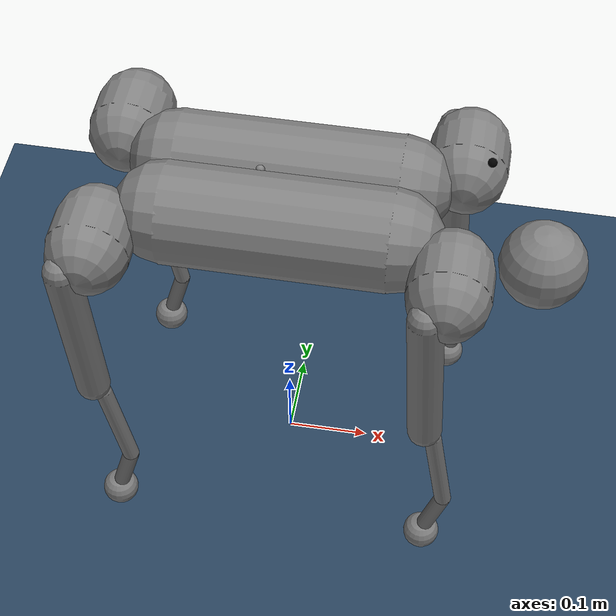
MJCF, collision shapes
<mujoco model="go2-mjx scene">
  <compiler angle="radian" meshdir="../assets/"/>

  <option timestep="0.004" iterations="1" ls_iterations="5">
    <flag eulerdamp="disable"/>
  </option>

  <size nkey="2"/>

  <visual>
    <global azimuth="120" elevation="-20"/>
    <headlight ambient="0.3 0.3 0.3" diffuse="0.6 0.6 0.6" specular="0 0 0"/>
    <rgba haze="0.15 0.25 0.35 1"/>
  </visual>

  <statistic extent="0.8" center="0 0 0.1"/>

  <default>
    <default class="go2">
      <joint armature="0.01" damping="0.1" frictionloss="0.2"/>
      <geom type="mesh" contype="0" conaffinity="0" friction="0.6"/>
      <default class="go2/abduction">
        <joint range="-1.0472 1.0472"/>
      </default>
      <default class="go2/hip">
        <default class="go2/front_hip">
          <joint range="-1.5708 3.4907"/>
        </default>
        <default class="go2/back_hip">
          <joint range="-0.5236 4.5379"/>
        </default>
      </default>
      <default class="go2/knee">
        <joint range="-2.7227 -0.83776"/>
      </default>
      <default class="go2/foot"/>
      <default class="go2/collision">
        <geom conaffinity="2" group="3"/>
        <default class="go2/collision/lidar">
          <geom size="0.05 0 0" type="sphere"/>
        </default>
        <default class="go2/collision/torso">
          <geom size="0.058 0.125 0" type="capsule"/>
          <default class="go2/collision/torso/left"/>
          <default class="go2/collision/torso/right"/>
        </default>
        <default class="go2/collision/hip">
          <geom size="0.046 0.02 0" type="capsule"/>
          <default class="go2/collision/hip/left"/>
          <default class="go2/collision/hip/right"/>
        </default>
        <default class="go2/collision/thigh">
          <geom size="0.02 0 0" type="capsule"/>
        </default>
        <default class="go2/collision/calf">
          <geom size="0.01 0 0" type="capsule"/>
          <default class="go2/collision/calf/upper"/>
          <default class="go2/collision/calf/lower"/>
        </default>
        <default class="go2/collision/foot">
          <geom size="0.022 0 0" type="sphere" condim="6" friction="0.8 0.02 0.01" solimp="0.9 0.95 0.022"/>
        </default>
      </default>
    </default>
    <default class="go2/abduction/motor">
      <general forcerange="-23.7 23.7"/>
    </default>
    <default class="go2/hip/motor">
      <general forcerange="-23.7 23.7"/>
    </default>
    <default class="go2/knee/motor">
      <general forcerange="-45.43 45.43"/>
    </default>
  </default>

  <asset>
    <texture type="skybox" colorspace="auto" builtin="gradient" rgb1="0.3 0.5 0.7" rgb2="0 0 0" width="512" height="3072"/>
    <texture type="2d" colorspace="auto" name="groundplane" builtin="checker" mark="edge" rgb1="0.2 0.3 0.4" rgb2="0.1 0.2 0.3" markrgb="0.8 0.8 0.8" width="300" height="300"/>
    <material name="metal" rgba="0.9 0.95 0.95 1"/>
    <material name="black" rgba="0 0 0 1"/>
    <material name="white"/>
    <material name="gray" rgba="0.671705 0.692426 0.77427 1"/>
    <material name="groundplane" texture="groundplane" texuniform="true" texrepeat="5 5" reflectance="0.2"/>
    <mesh name="base_0" content_type="model/obj" file="base_0.obj"/>
    <mesh name="base_1" content_type="model/obj" file="base_1.obj"/>
    <mesh name="base_2" content_type="model/obj" file="base_2.obj"/>
    <mesh name="base_3" content_type="model/obj" file="base_3.obj"/>
    <mesh name="base_4" content_type="model/obj" file="base_4.obj"/>
    <mesh name="hip_0" content_type="model/obj" file="hip_0.obj"/>
    <mesh name="hip_1" content_type="model/obj" file="hip_1.obj"/>
    <mesh name="thigh_0" content_type="model/obj" file="thigh_0.obj"/>
    <mesh name="thigh_1" content_type="model/obj" file="thigh_1.obj"/>
    <mesh name="thigh_mirror_0" content_type="model/obj" file="thigh_mirror_0.obj"/>
    <mesh name="thigh_mirror_1" content_type="model/obj" file="thigh_mirror_1.obj"/>
    <mesh name="calf_0" content_type="model/obj" file="calf_0.obj"/>
    <mesh name="calf_1" content_type="model/obj" file="calf_1.obj"/>
    <mesh name="calf_mirror_0" content_type="model/obj" file="calf_mirror_0.obj"/>
    <mesh name="calf_mirror_1" content_type="model/obj" file="calf_mirror_1.obj"/>
    <mesh name="foot" content_type="model/obj" file="foot.obj"/>
  </asset>

  <worldbody>
    <geom name="floor" size="0 0 0.05" type="plane" material="groundplane"/>
    <camera name="default" pos="0.846 -1.465 0.916" quat="0.791164 0.554139 0.148485 0.211997"/>
    <light pos="0 0 1.5" dir="0 0 -1" type="directional"/>
    <body name="base_link" childclass="go2" pos="0 0 0.445">
      <inertial pos="0.021112 0 -0.005366" quat="-0.000543471 0.713435 -0.00173769 0.700719" mass="6.921" diaginertia="0.107027 0.0980771 0.0244531"/>
      <joint type="free" armature="0" damping="0" frictionloss="0"/>
      <geom material="black" mesh="base_0"/>
      <geom material="black" mesh="base_1"/>
      <geom material="black" mesh="base_2"/>
      <geom material="white" mesh="base_3"/>
      <geom material="gray" mesh="base_4"/>
      <geom name="lidar_collision" class="go2/collision/lidar" pos="0.29 0 -0.055"/>
      <geom name="left_torso_collision" class="go2/collision/torso/left" pos="0 0.04 0" quat="0.707107 0 0.707107 0"/>
      <geom name="right_torso_collision" class="go2/collision/torso/right" pos="0 -0.04 0" quat="0.707107 0 0.707107 0"/>
      <site name="imu" pos="-0.02557 0 0.04232"/>
      <site name="vicon_marker" pos="0.22 0 0.095" material="black"/>
      <body name="front_right_hip" pos="0.1934 -0.0465 0">
        <inertial pos="-0.00539504 -0.0413848 -0.0563648" quat="0.706936 0.707253 0.000685605 -0.00594448" mass="0.638546" diaginertia="0.000452822 0.000564332 0.000834361"/>
        <joint name="front_right_hip_joint" class="go2/abduction" pos="0 0 0" axis="1 0 0" armature="0.00984806" damping="0.273812" frictionloss="0.212019"/>
        <geom quat="4.63268e-05 1 0 0" material="metal" mesh="hip_0"/>
        <geom quat="4.63268e-05 1 0 0" material="gray" mesh="hip_1"/>
        <geom name="front_right_hip_collision" class="go2/collision/hip/right" pos="0 -0.045 0" quat="0.707107 0.707107 0 0"/>
        <body name="front_right_thigh" pos="0 -0.0955 0">
          <inertial pos="-0.0176936 0.0207631 -0.0211701" quat="-0.353648 0.654075 0.416484 0.523125" mass="0.940988" diaginertia="0.00185501 0.00408487 0.00579158"/>
          <joint name="front_right_thigh_joint" class="go2/front_hip" pos="0 0 0" axis="0 1 0" armature="0.008979" damping="0.276797" frictionloss="0.215107"/>
          <geom material="metal" mesh="thigh_mirror_0"/>
          <geom material="gray" mesh="thigh_mirror_1"/>
          <geom name="front_right_thigh_collision" class="go2/collision/thigh" size="0.02 0.100125" pos="-0.015 0 -0.1" quat="0.999688 0 -0.0249766 0"/>
          <body name="front_right_calf" pos="0 0 -0.213">
            <inertial pos="-0.000969028 0.0144613 -0.0953293" quat="-0.508595 0.523356 0.537709 0.422255" mass="0.321185" diaginertia="7.10238e-05 0.000926239 0.000961252"/>
            <joint name="front_right_calf_joint" class="go2/knee" pos="0 0 0" axis="0 1 0" armature="0.0265876" damping="0.26187" frictionloss="1.05314"/>
            <geom material="gray" mesh="calf_mirror_0"/>
            <geom material="black" mesh="calf_mirror_1"/>
            <geom pos="0 0 -0.213" quat="1 0 0 0" material="black" mesh="foot"/>
            <geom name="front_right_calf_upper_collision" class="go2/collision/calf/upper" size="0.01 0.0657647" pos="0.01 0 -0.065" quat="0.997089 0 -0.0762506 0"/>
            <geom name="front_right_calf_lower_collision" class="go2/collision/calf/lower" size="0.01 0.0364005" pos="0.01 0 -0.165" quat="0.990334 0 0.138701 0"/>
            <geom name="front_right_foot_collision" class="go2/collision/foot" pos="-0.002 0 -0.213"/>
            <site name="front_right_foot" class="go2/foot" pos="-0.002 0 -0.213"/>
          </body>
        </body>
      </body>
      <body name="front_left_hip" pos="0.1934 0.0465 0">
        <inertial pos="-0.00539743 0.0562607 -0.0685062" quat="0.707238 0.706951 0.00582478 -0.000571805" mass="0.632832" diaginertia="0.000445976 0.000559152 0.000824266"/>
        <joint name="front_left_hip_joint" class="go2/abduction" pos="0 0 0" axis="1 0 0" armature="0.000265323" damping="0.290567" frictionloss="0.217182"/>
        <geom material="metal" mesh="hip_0"/>
        <geom material="gray" mesh="hip_1"/>
        <geom name="front_left_hip_collision" class="go2/collision/hip/left" pos="0 0.045 0" quat="0.707107 0.707107 0 0"/>
        <body name="front_left_thigh" pos="0 0.0955 0">
          <inertial pos="-0.0287343 -0.0218318 -0.00920139" quat="0.395937 0.716359 0.553963 -0.15228" mass="0.976759" diaginertia="0.000547193 0.0100671 0.0102892"/>
          <joint name="front_left_thigh_joint" class="go2/front_hip" pos="0 0 0" axis="0 1 0" armature="0.00866881" damping="0.26283" frictionloss="0.270164"/>
          <geom material="metal" mesh="thigh_0"/>
          <geom material="gray" mesh="thigh_1"/>
          <geom name="front_left_thigh_collision" class="go2/collision/thigh" size="0.02 0.100125" pos="-0.015 0 -0.1" quat="0.999688 0 -0.0249766 0"/>
          <body name="front_left_calf" pos="0 0 -0.213">
            <inertial pos="0.0137565 -0.0538878 -0.0944655" quat="0.211941 0.600701 0.722358 -0.269144" mass="0.353822" diaginertia="6.47118e-05 0.00253923 0.00258703"/>
            <joint name="front_left_calf_joint" class="go2/knee" pos="0 0 0" axis="0 1 0" armature="0.02577" damping="0.275625" frictionloss="0.972735"/>
            <geom material="gray" mesh="calf_0"/>
            <geom material="black" mesh="calf_1"/>
            <geom pos="0 0 -0.213" quat="1 0 0 0" material="black" mesh="foot"/>
            <geom name="front_left_calf_upper_collision" class="go2/collision/calf/upper" size="0.01 0.0657647" pos="0.01 0 -0.065" quat="0.997089 0 -0.0762506 0"/>
            <geom name="front_left_calf_lower_collision" class="go2/collision/calf/lower" size="0.01 0.0364005" pos="0.01 0 -0.165" quat="0.990334 0 0.138701 0"/>
            <geom name="front_left_foot_collision" class="go2/collision/foot" pos="-0.002 0 -0.213"/>
            <site name="front_left_foot" class="go2/foot" pos="-0.002 0 -0.213"/>
          </body>
        </body>
      </body>
      <body name="hind_right_hip" pos="-0.1934 -0.0465 0">
        <inertial pos="0.00536951 -0.040392 -0.0693013" quat="0.706912 0.707277 -0.00062044 0.00587229" mass="0.618177" diaginertia="0.000437574 0.000546353 0.000807046"/>
        <joint name="hind_right_hip_joint" class="go2/abduction" pos="0 0 0" axis="1 0 0" armature="0.00273289" damping="0.265741" frictionloss="0.201325"/>
        <geom quat="2.14617e-09 4.63268e-05 4.63268e-05 -1" material="metal" mesh="hip_0"/>
        <geom quat="2.14617e-09 4.63268e-05 4.63268e-05 -1" material="gray" mesh="hip_1"/>
        <geom name="hind_right_hip_collision" class="go2/collision/hip/right" pos="0 -0.045 0" quat="0.707107 0.707107 0 0"/>
        <body name="hind_right_thigh" pos="0 -0.0955 0">
          <inertial pos="-0.0237664 0.0229732 -0.0116018" quat="-0.115718 0.543025 0.661631 0.503962" mass="0.939326" diaginertia="0.000757916 0.00807004 0.00861703"/>
          <joint name="hind_right_thigh_joint" class="go2/back_hip" pos="0 0 0" axis="0 1 0" armature="0.00697476" damping="0.270716" frictionloss="0.215497"/>
          <geom material="metal" mesh="thigh_mirror_0"/>
          <geom material="gray" mesh="thigh_mirror_1"/>
          <geom name="hind_right_thigh_collision" class="go2/collision/thigh" size="0.02 0.100125" pos="-0.015 0 -0.1" quat="0.999688 0 -0.0249766 0"/>
          <body name="hind_right_calf" pos="0 0 -0.213">
            <inertial pos="0.00298957 0.0410954 -0.0927355" quat="-0.283062 0.718639 0.597297 0.216032" mass="0.360365" diaginertia="6.54825e-05 0.00219437 0.00224158"/>
            <joint name="hind_right_calf_joint" class="go2/knee" pos="0 0 0" axis="0 1 0" armature="0.0286798" damping="0.288348" frictionloss="0.651666"/>
            <geom material="gray" mesh="calf_mirror_0"/>
            <geom material="black" mesh="calf_mirror_1"/>
            <geom pos="0 0 -0.213" quat="1 0 0 0" material="black" mesh="foot"/>
            <geom name="hind_right_calf_upper_collision" class="go2/collision/calf/upper" size="0.01 0.0657647" pos="0.01 0 -0.065" quat="0.997089 0 -0.0762506 0"/>
            <geom name="hind_right_calf_lower_collision" class="go2/collision/calf/lower" size="0.01 0.0364005" pos="0.01 0 -0.165" quat="0.990334 0 0.138701 0"/>
            <geom name="hind_right_foot_collision" class="go2/collision/foot" pos="-0.002 0 -0.213"/>
            <site name="hind_right_foot" class="go2/foot" pos="-0.002 0 -0.213"/>
          </body>
        </body>
      </body>
      <body name="hind_left_hip" pos="-0.1934 0.0465 0">
        <inertial pos="0.00533014 0.0354588 -0.0891108" quat="0.707399 0.706789 -0.00594581 0.000686325" mass="0.63646" diaginertia="0.000451375 0.000562488 0.000831681"/>
        <joint name="hind_left_hip_joint" class="go2/abduction" pos="0 0 0" axis="1 0 0" armature="0.00743886" damping="0.281798" frictionloss="0.325581"/>
        <geom quat="4.63268e-05 0 1 0" material="metal" mesh="hip_0"/>
        <geom quat="4.63268e-05 0 1 0" material="gray" mesh="hip_1"/>
        <geom name="hind_left_hip_collision" class="go2/collision/hip/left" pos="0 0.045 0" quat="0.707107 0.707107 0 0"/>
        <body name="hind_left_thigh" pos="0 0.0955 0">
          <inertial pos="-0.0207307 -0.0316548 -0.0097971" quat="0.707303 -0.500629 -0.465476 -0.180071" mass="0.907451" diaginertia="0.00091271 0.00496607 0.00563906"/>
          <joint name="hind_left_thigh_joint" class="go2/back_hip" pos="0 0 0" axis="0 1 0" armature="0.00850293" damping="0.260745" frictionloss="0.199008"/>
          <geom material="metal" mesh="thigh_0"/>
          <geom material="gray" mesh="thigh_1"/>
          <geom name="hind_left_thigh_collision" class="go2/collision/thigh" size="0.02 0.100125" pos="-0.015 0 -0.1" quat="0.999688 0 -0.0249766 0"/>
          <body name="hind_left_calf" pos="0 0 -0.213">
            <inertial pos="-0.00715084 0.0148516 -0.0888009" quat="-0.29179 0.631988 0.648358 0.308353" mass="0.336054" diaginertia="6.51809e-05 0.00133707 0.00137907"/>
            <joint name="hind_left_calf_joint" class="go2/knee" pos="0 0 0" axis="0 1 0" armature="0.0269508" damping="0.240772" frictionloss="1.01705"/>
            <geom material="gray" mesh="calf_0"/>
            <geom material="black" mesh="calf_1"/>
            <geom pos="0 0 -0.213" quat="1 0 0 0" material="black" mesh="foot"/>
            <geom name="hind_left_calf_upper_collision" class="go2/collision/calf/upper" size="0.01 0.0657647" pos="0.01 0 -0.065" quat="0.997089 0 -0.0762506 0"/>
            <geom name="hind_left_calf_lower_collision" class="go2/collision/calf/lower" size="0.01 0.0364005" pos="0.01 0 -0.165" quat="0.990334 0 0.138701 0"/>
            <geom name="hind_left_foot_collision" class="go2/collision/foot" pos="-0.002 0 -0.213"/>
            <site name="hind_left_foot" class="go2/foot" pos="-0.002 0 -0.213"/>
          </body>
        </body>
      </body>
    </body>
  </worldbody>

  <contact>
    <pair geom1="floor" geom2="lidar_collision" name="lidar_floor_contact" condim="1" friction="0.8 1 0.005 0.0001 0.0001"/>
    <pair geom1="floor" geom2="left_torso_collision" name="left_torso_floor_contact" condim="1" friction="0.8 1 0.005 0.0001 0.0001"/>
    <pair geom1="floor" geom2="right_torso_collision" name="right_torso_floor_contact" condim="1" friction="0.8 1 0.005 0.0001 0.0001"/>
    <pair geom1="floor" geom2="front_right_foot_collision" name="right_front_foot_floor_contact" solref="0.01" solimp="0.9 0.95 0.022" friction="0.8 0.8 0.02 0.01 0.01"/>
    <pair geom1="floor" geom2="front_right_calf_upper_collision" name="front_right_calf_upper_floor_contact" condim="1" friction="0.8 1 0.005 0.0001 0.0001"/>
    <pair geom1="floor" geom2="front_right_calf_lower_collision" name="front_right_calf_lower_floor_contact" condim="1" friction="0.8 1 0.005 0.0001 0.0001"/>
    <pair geom1="floor" geom2="front_left_foot_collision" name="left_front_foot_floor_contact" solref="0.01" solimp="0.9 0.95 0.022" friction="0.8 0.8 0.02 0.01 0.01"/>
    <pair geom1="floor" geom2="front_left_calf_upper_collision" name="front_left_calf_upper_floor_contact" condim="1" friction="0.8 1 0.005 0.0001 0.0001"/>
    <pair geom1="floor" geom2="front_left_calf_lower_collision" name="front_left_calf_lower_floor_contact" condim="1" friction="0.8 1 0.005 0.0001 0.0001"/>
    <pair geom1="floor" geom2="hind_right_hip_collision" name="hind_right_hip_floor_contact" condim="1" friction="0.8 1 0.005 0.0001 0.0001"/>
    <pair geom1="floor" geom2="hind_right_thigh_collision" name="hind_right_thigh_floor_contact" condim="1" friction="0.8 1 0.005 0.0001 0.0001"/>
    <pair geom1="floor" geom2="hind_right_foot_collision" name="right_hind_foot_floor_contact" solref="0.01" solimp="0.9 0.95 0.022" friction="0.8 0.8 0.02 0.01 0.01"/>
    <pair geom1="floor" geom2="hind_right_calf_upper_collision" name="hind_right_calf_upper_floor_contact" condim="1" friction="0.8 1 0.005 0.0001 0.0001"/>
    <pair geom1="floor" geom2="hind_right_calf_lower_collision" name="hind_right_calf_lower_floor_contact" condim="1" friction="0.8 1 0.005 0.0001 0.0001"/>
    <pair geom1="floor" geom2="hind_left_hip_collision" name="hind_left_hip_floor_contact" condim="1" friction="0.8 1 0.005 0.0001 0.0001"/>
    <pair geom1="floor" geom2="hind_left_thigh_collision" name="hind_left_thigh_floor_contact" condim="1" friction="0.8 1 0.005 0.0001 0.0001"/>
    <pair geom1="floor" geom2="hind_left_foot_collision" name="left_hind_foot_floor_contact" solref="0.01" solimp="0.9 0.95 0.022" friction="0.8 0.8 0.02 0.01 0.01"/>
    <pair geom1="floor" geom2="hind_left_calf_upper_collision" name="hind_left_calf_upper_floor_contact" condim="1" friction="0.8 1 0.005 0.0001 0.0001"/>
    <pair geom1="floor" geom2="hind_left_calf_lower_collision" name="hind_left_calf_lower_floor_contact" condim="1" friction="0.8 1 0.005 0.0001 0.0001"/>
    <pair geom1="front_right_hip_collision" geom2="front_right_foot_collision" condim="1" friction="0.8 1 0.005 0.0001 0.0001"/>
    <pair geom1="front_right_hip_collision" geom2="front_right_calf_upper_collision" condim="1" friction="0.8 1 0.005 0.0001 0.0001"/>
    <pair geom1="front_right_hip_collision" geom2="front_right_calf_lower_collision" condim="1" friction="0.8 1 0.005 0.0001 0.0001"/>
    <pair geom1="front_right_thigh_collision" geom2="front_right_foot_collision" condim="1" friction="0.8 1 0.005 0.0001 0.0001"/>
    <pair geom1="front_right_foot_collision" geom2="hind_right_foot_collision" condim="1" friction="0.8 1 0.005 0.0001 0.0001"/>
    <pair geom1="front_right_foot_collision" geom2="hind_right_calf_upper_collision" condim="1" friction="0.8 1 0.005 0.0001 0.0001"/>
    <pair geom1="front_right_foot_collision" geom2="hind_right_calf_lower_collision" condim="1" friction="0.8 1 0.005 0.0001 0.0001"/>
    <pair geom1="front_right_calf_upper_collision" geom2="hind_right_foot_collision" condim="1" friction="0.8 1 0.005 0.0001 0.0001"/>
    <pair geom1="front_right_calf_lower_collision" geom2="hind_right_foot_collision" condim="1" friction="0.8 1 0.005 0.0001 0.0001"/>
    <pair geom1="front_left_hip_collision" geom2="front_left_foot_collision" condim="1" friction="0.8 1 0.005 0.0001 0.0001"/>
    <pair geom1="front_left_hip_collision" geom2="front_left_calf_upper_collision" condim="1" friction="0.8 1 0.005 0.0001 0.0001"/>
    <pair geom1="front_left_hip_collision" geom2="front_left_calf_lower_collision" condim="1" friction="0.8 1 0.005 0.0001 0.0001"/>
    <pair geom1="front_left_thigh_collision" geom2="front_left_foot_collision" condim="1" friction="0.8 1 0.005 0.0001 0.0001"/>
    <pair geom1="front_left_foot_collision" geom2="hind_left_foot_collision" condim="1" friction="0.8 1 0.005 0.0001 0.0001"/>
    <pair geom1="front_left_foot_collision" geom2="hind_left_calf_upper_collision" condim="1" friction="0.8 1 0.005 0.0001 0.0001"/>
    <pair geom1="front_left_foot_collision" geom2="hind_left_calf_lower_collision" condim="1" friction="0.8 1 0.005 0.0001 0.0001"/>
    <pair geom1="front_left_calf_upper_collision" geom2="hind_left_foot_collision" condim="1" friction="0.8 1 0.005 0.0001 0.0001"/>
    <pair geom1="front_left_calf_lower_collision" geom2="hind_left_foot_collision" condim="1" friction="0.8 1 0.005 0.0001 0.0001"/>
    <pair geom1="hind_right_hip_collision" geom2="hind_right_foot_collision" condim="1" friction="0.8 1 0.005 0.0001 0.0001"/>
    <pair geom1="hind_right_hip_collision" geom2="hind_right_calf_upper_collision" condim="1" friction="0.8 1 0.005 0.0001 0.0001"/>
    <pair geom1="hind_right_hip_collision" geom2="hind_right_calf_lower_collision" condim="1" friction="0.8 1 0.005 0.0001 0.0001"/>
    <pair geom1="hind_right_thigh_collision" geom2="hind_right_foot_collision" condim="1" friction="0.8 1 0.005 0.0001 0.0001"/>
    <pair geom1="hind_left_hip_collision" geom2="hind_left_foot_collision" condim="1" friction="0.8 1 0.005 0.0001 0.0001"/>
    <pair geom1="hind_left_hip_collision" geom2="hind_left_calf_upper_collision" condim="1" friction="0.8 1 0.005 0.0001 0.0001"/>
    <pair geom1="hind_left_hip_collision" geom2="hind_left_calf_lower_collision" condim="1" friction="0.8 1 0.005 0.0001 0.0001"/>
    <pair geom1="hind_left_thigh_collision" geom2="hind_left_foot_collision" condim="1" friction="0.8 1 0.005 0.0001 0.0001"/>
  </contact>

  <actuator>
    <general name="front_right_hip" class="go2/abduction/motor" joint="front_right_hip_joint"/>
    <general name="front_right_thigh" class="go2/hip/motor" joint="front_right_thigh_joint"/>
    <general name="front_right_calf" class="go2/knee/motor" joint="front_right_calf_joint"/>
    <general name="front_left_hip" class="go2/abduction/motor" joint="front_left_hip_joint"/>
    <general name="front_left_thigh" class="go2/hip/motor" joint="front_left_thigh_joint"/>
    <general name="front_left_calf" class="go2/knee/motor" joint="front_left_calf_joint"/>
    <general name="hind_right_hip" class="go2/abduction/motor" joint="hind_right_hip_joint"/>
    <general name="hind_right_thigh" class="go2/hip/motor" joint="hind_right_thigh_joint"/>
    <general name="hind_right_calf" class="go2/knee/motor" joint="hind_right_calf_joint"/>
    <general name="hind_left_hip" class="go2/abduction/motor" joint="hind_left_hip_joint"/>
    <general name="hind_left_thigh" class="go2/hip/motor" joint="hind_left_thigh_joint"/>
    <general name="hind_left_calf" class="go2/knee/motor" joint="hind_left_calf_joint"/>
  </actuator>

  <sensor>
    <gyro site="imu" name="imu_gyro"/>
    <framequat objtype="site" objname="imu" name="imu_orientation"/>
    <accelerometer site="imu" name="imu_acceleration"/>
    <velocimeter site="imu" name="local_linear_velocity"/>
    <framepos objtype="site" objname="imu" name="imu_position"/>
    <framelinvel objtype="site" objname="front_right_foot" name="front_right_global_linear_velocity"/>
    <framelinvel objtype="site" objname="front_left_foot" name="front_left_global_linear_velocity"/>
    <framelinvel objtype="site" objname="hind_right_foot" name="hind_right_global_linear_velocity"/>
    <framelinvel objtype="site" objname="hind_left_foot" name="hind_left_global_linear_velocity"/>
    <framepos objtype="site" objname="front_right_foot" reftype="site" refname="imu" name="front_right_foot_position"/>
    <framepos objtype="site" objname="front_left_foot" reftype="site" refname="imu" name="front_left_foot_position"/>
    <framepos objtype="site" objname="hind_right_foot" reftype="site" refname="imu" name="hind_right_foot_position"/>
    <framepos objtype="site" objname="hind_left_foot" reftype="site" refname="imu" name="hind_left_foot_position"/>
    <framezaxis objtype="site" objname="imu" name="upvector"/>
    <framexaxis objtype="site" objname="imu" name="forwardvector"/>
    <framelinvel objtype="site" objname="imu" name="global_linear_velocity"/>
    <frameangvel objtype="site" objname="imu" name="global_angular_velocity"/>
    <contact geom1="front_right_foot_collision" geom2="floor" data="force" name="front_right_foot_to_floor_force_sensor"/>
    <contact geom1="front_left_foot_collision" geom2="floor" data="force" name="front_left_foot_to_floor_force_sensor"/>
    <contact geom1="hind_right_foot_collision" geom2="floor" data="force" name="hind_right_foot_to_floor_force_sensor"/>
    <contact geom1="hind_left_foot_collision" geom2="floor" data="force" name="hind_left_foot_to_floor_force_sensor"/>
    <contact geom1="lidar_collision" geom2="floor" reduce="mindist" name="lidar_to_floor"/>
    <contact geom1="left_torso_collision" geom2="floor" reduce="mindist" name="left_torso_to_floor"/>
    <contact geom1="right_torso_collision" geom2="floor" reduce="mindist" name="right_torso_to_floor"/>
    <contact geom1="front_right_foot_collision" geom2="floor" reduce="mindist" name="front_right_foot_to_floor"/>
    <contact geom1="front_left_foot_collision" geom2="floor" reduce="mindist" name="front_left_foot_to_floor"/>
    <contact geom1="hind_right_foot_collision" geom2="floor" reduce="mindist" name="hind_right_foot_to_floor"/>
    <contact geom1="hind_left_foot_collision" geom2="floor" reduce="mindist" name="hind_left_foot_to_floor"/>
    <contact geom1="front_right_calf_upper_collision" geom2="floor" reduce="mindist" name="front_right_calf_upper_to_floor"/>
    <contact geom1="front_right_calf_lower_collision" geom2="floor" reduce="mindist" name="front_right_calf_lower_to_floor"/>
    <contact geom1="front_left_calf_upper_collision" geom2="floor" reduce="mindist" name="front_left_calf_upper_to_floor"/>
    <contact geom1="front_left_calf_lower_collision" geom2="floor" reduce="mindist" name="front_left_calf_lower_to_floor"/>
    <contact geom1="hind_right_calf_upper_collision" geom2="floor" reduce="mindist" name="hind_right_calf_upper_to_floor"/>
    <contact geom1="hind_right_calf_lower_collision" geom2="floor" reduce="mindist" name="hind_right_calf_lower_to_floor"/>
    <contact geom1="hind_left_calf_upper_collision" geom2="floor" reduce="mindist" name="hind_left_calf_upper_to_floor"/>
    <contact geom1="hind_left_calf_lower_collision" geom2="floor" reduce="mindist" name="hind_left_calf_lower_to_floor"/>
    <contact geom1="hind_right_thigh_collision" geom2="floor" reduce="mindist" name="hind_right_thigh_to_floor"/>
    <contact geom1="hind_left_thigh_collision" geom2="floor" reduce="mindist" name="hind_left_thigh_to_floor"/>
    <contact geom1="hind_right_hip_collision" geom2="floor" reduce="mindist" name="hind_right_hip_to_floor"/>
    <contact geom1="hind_left_hip_collision" geom2="floor" reduce="mindist" name="hind_left_hip_to_floor"/>
    <contact geom1="front_right_foot_collision" geom2="hind_right_foot_collision" reduce="mindist" name="front_right_foot_to_hind_right_foot"/>
    <contact geom1="front_left_foot_collision" geom2="hind_left_foot_collision" reduce="mindist" name="front_left_foot_to_hind_left_foot"/>
    <contact geom1="front_right_foot_collision" geom2="front_right_thigh_collision" reduce="mindist" name="front_right_foot_to_front_right_thigh"/>
    <contact geom1="front_right_foot_collision" geom2="front_right_hip_collision" reduce="mindist" name="front_right_foot_to_front_right_hip"/>
    <contact geom1="front_right_calf_upper_collision" geom2="front_right_hip_collision" reduce="mindist" name="front_right_calf_upper_to_front_right_hip"/>
    <contact geom1="front_right_calf_lower_collision" geom2="front_right_hip_collision" reduce="mindist" name="front_right_calf_lower_to_front_right_hip"/>
    <contact geom1="front_left_foot_collision" geom2="front_left_thigh_collision" reduce="mindist" name="front_left_foot_to_front_left_thigh"/>
    <contact geom1="front_left_foot_collision" geom2="front_left_hip_collision" reduce="mindist" name="front_left_foot_to_front_left_hip"/>
    <contact geom1="front_left_calf_upper_collision" geom2="front_left_hip_collision" reduce="mindist" name="front_left_calf_upper_to_front_left_hip"/>
    <contact geom1="front_left_calf_lower_collision" geom2="front_left_hip_collision" reduce="mindist" name="front_left_calf_lower_to_front_left_hip"/>
    <contact geom1="hind_right_foot_collision" geom2="hind_right_thigh_collision" reduce="mindist" name="hind_right_foot_to_hind_right_thigh"/>
    <contact geom1="hind_right_foot_collision" geom2="hind_right_hip_collision" reduce="mindist" name="hind_right_foot_to_hind_right_hip"/>
    <contact geom1="hind_right_calf_upper_collision" geom2="hind_right_hip_collision" reduce="mindist" name="hind_right_calf_upper_to_hind_right_hip"/>
    <contact geom1="hind_right_calf_lower_collision" geom2="hind_right_hip_collision" reduce="mindist" name="hind_right_calf_lower_to_hind_right_hip"/>
    <contact geom1="hind_left_foot_collision" geom2="hind_left_thigh_collision" reduce="mindist" name="hind_left_foot_to_hind_left_thigh"/>
    <contact geom1="hind_left_foot_collision" geom2="hind_left_hip_collision" reduce="mindist" name="hind_left_foot_to_hind_left_hip"/>
    <contact geom1="hind_left_calf_upper_collision" geom2="hind_left_hip_collision" reduce="mindist" name="hind_left_calf_upper_to_hind_left_hip"/>
    <contact geom1="hind_left_calf_lower_collision" geom2="hind_left_hip_collision" reduce="mindist" name="hind_left_calf_lower_to_hind_left_hip"/>
    <contact geom1="front_right_foot_collision" geom2="hind_right_calf_upper_collision" reduce="mindist" name="front_right_foot_to_hind_right_calf_upper"/>
    <contact geom1="front_right_foot_collision" geom2="hind_right_calf_lower_collision" reduce="mindist" name="front_right_foot_to_hind_right_calf_lower"/>
    <contact geom1="front_left_foot_collision" geom2="hind_left_calf_upper_collision" reduce="mindist" name="front_left_foot_to_hind_left_calf_upper"/>
    <contact geom1="front_left_foot_collision" geom2="hind_left_calf_lower_collision" reduce="mindist" name="front_left_foot_to_hind_left_calf_lower"/>
    <contact geom1="hind_right_foot_collision" geom2="front_right_calf_upper_collision" reduce="mindist" name="hind_right_foot_to_front_right_calf_upper"/>
    <contact geom1="hind_right_foot_collision" geom2="front_right_calf_lower_collision" reduce="mindist" name="hind_right_foot_to_front_right_calf_lower"/>
    <contact geom1="hind_left_foot_collision" geom2="front_left_calf_upper_collision" reduce="mindist" name="hind_left_foot_to_front_left_calf_upper"/>
    <contact geom1="hind_left_foot_collision" geom2="front_left_calf_lower_collision" reduce="mindist" name="hind_left_foot_to_front_left_calf_lower"/>
  </sensor>

  <keyframe>
    <key name="home" qpos="0 0 0.3 1 0 0 0 0 0.9 -1.8 0 0.9 -1.8 0 0.9 -1.8 0 0.9 -1.8" ctrl="0 0.9 -1.8 0 0.9 -1.8 0 0.9 -1.8 0 0.9 -1.8"/>
    <key name="footstand" qpos="0 0 0.54 0.707107 0 -0.707107 0 0 1.8 -1.6 0 1.8 -1.68 0 2.21 -1.4 0 2.21 -1.4" ctrl="0 1.8 -1.6 0 1.8 -1.68 0 2.21 -1.4 0 2.21 -1.4"/>
  </keyframe>
</mujoco>
